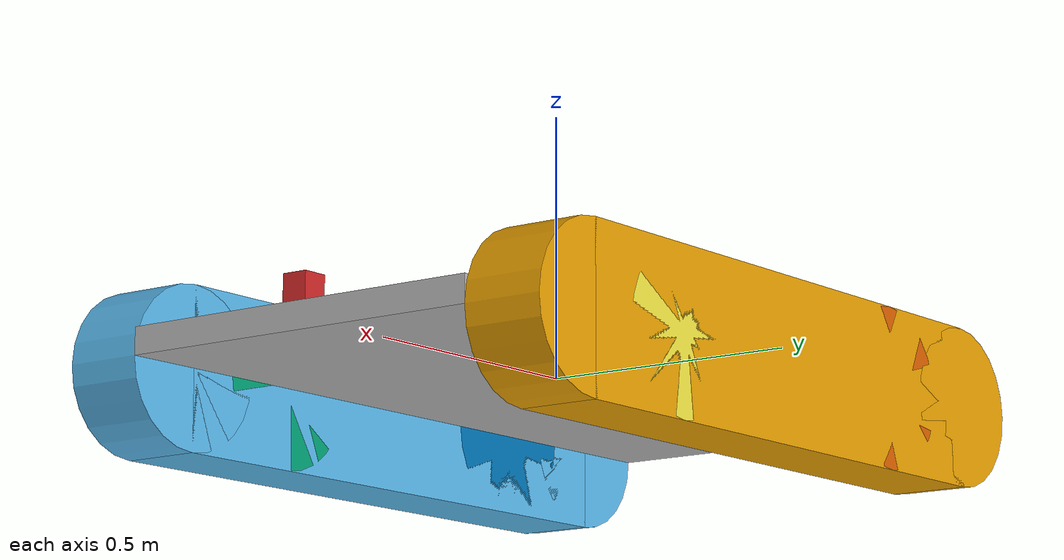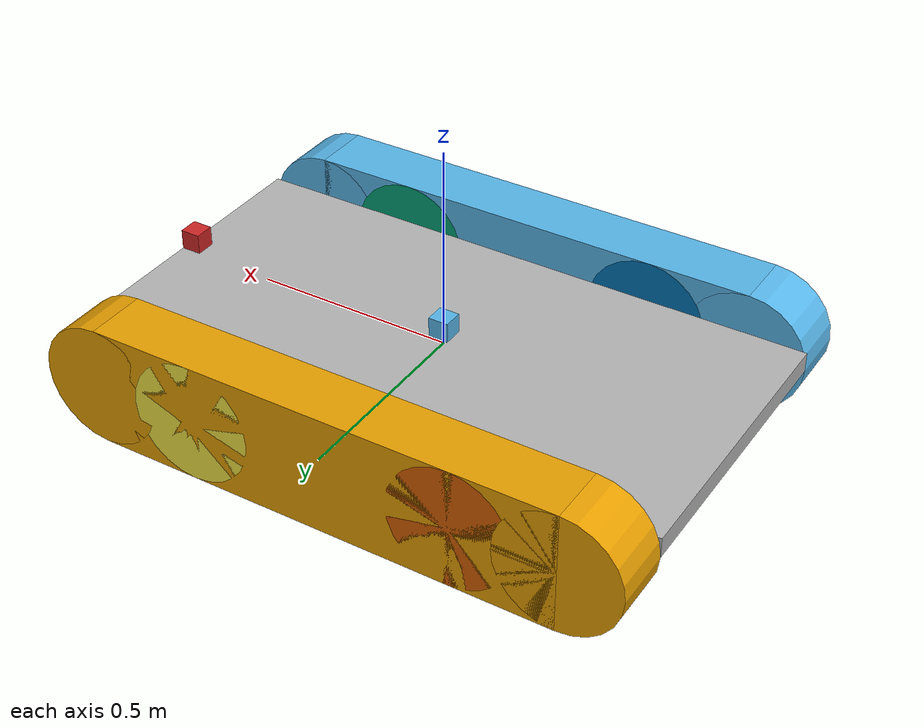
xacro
<?xml version="1.0"?>
<robot xmlns:xacro="http://www.ros.org/wiki/xacro" name="excavator">
  <xacro:property name="itom" value="0.0254" /> <!-- Inches to meters conversion -->
  <xacro:property name="base_width" value="${29*itom}"/>
  <xacro:property name="base_length" value="${58*itom}"/> <!-- Max val: 50" bare minimum -->
  <xacro:property name="base_height" value="${2*itom}"/> <!-- BS'd this number, total random guess -->
  <xacro:property name="wheel_radius" value="${6*itom}"/>
  <xacro:property name="wheel_width" value="${6*itom}"/>

  <!--DRIVEBASE-->
  <!-- A macro for creating a wheel with a link, joint, and transmission -->
  <xacro:macro name="wheel" params="name fb lr">
    <link name="${name}">
      <visual>
        <geometry>
          <cylinder radius="${wheel_radius}" length="${wheel_width}" />
        </geometry>
        <origin rpy="${pi/2} 0 0" />
      </visual>
      <collision>
        <geometry>
          <cylinder radius="${wheel_radius}" length="${wheel_width}" />
        </geometry>
        <origin rpy="${pi/2} 0 0" />
      </collision>
      <inertial>
        <origin xyz="0 ${wheel_width/2} 0" rpy="0 0 0"/>
        <mass value="500"/> <!-- TODO: Update with proper mass, possibly calculated from Solidworks? -->
        <inertia ixx="10.0" ixy="0.0" ixz="0.0" iyy="10.0" iyz="0.0" izz="10.0"/> <!-- TODO: Update with proper inertial values, possibly calculated from Solidworks? -->
      </inertial>
    </link>
    <joint name="${name}_joint" type="continuous">
      <parent link="base_link"/>
      <child link="${name}"/><!--rpy="0 0 ${pi/2}"-->
      <!-- TODO: Settle to more reasonable numbers -->
      <origin xyz="${fb*base_length/2 - 16*fb*itom} ${lr*base_width/2 + lr*wheel_width/2} ${-base_height/2}"/>
      <axis xyz="0 1 0"/>
      <limit effort="100.0"  velocity="100.0"/>
      <dynamics damping="0.7"/>
    </joint>
    <transmission name="${name}_tran">
      <type>transmission_interface/SimpleTransmission</type>
      <joint name="${name}_joint">
        <hardwareInterface>hardware_interface/EffortJointInterface</hardwareInterface>
      </joint>
      <actuator name="${name}_motor">
        <hardwareInterface>hardware_interface/EffortJointInterface</hardwareInterface>
        <mechanicalReduction>1</mechanicalReduction>
        <motorTorqueConstant>1</motorTorqueConstant>
      </actuator>
    </transmission>
  </xacro:macro>

  <link name="tread_left" >
    <visual>
      <geometry>
        <cylinder radius="${wheel_radius}" length="${wheel_width}"/>
      </geometry>
      <origin xyz="${base_length/2-wheel_radius} 0 ${-wheel_width/2}" />
    </visual>
    <visual>
      <geometry>
        <cylinder radius="${wheel_radius}" length="${wheel_width}"/>
      </geometry>
      <origin xyz="${-base_length/2+wheel_radius} 0 ${-wheel_width/2}" />
    </visual>
    <visual>
      <geometry>
        <box size="${base_length-2*wheel_radius} ${2*wheel_radius} ${wheel_width}" />
      </geometry>
      <origin xyz="0 0 ${-wheel_width/2}" />
    </visual>
  </link>

  <link name="tread_right" >
    <visual>
      <geometry>
        <cylinder radius="${wheel_radius}" length="${wheel_width}"/>
      </geometry>
      <origin xyz="${base_length/2-wheel_radius} 0 ${wheel_width/2}" />
    </visual>
    <visual>
      <geometry>
        <cylinder radius="${wheel_radius}" length="${wheel_width}"/>
      </geometry>
      <origin xyz="${-base_length/2+wheel_radius} 0 ${wheel_width/2}" />
    </visual>
    <visual>
      <geometry>
        <box size="${base_length-2*wheel_radius} ${2*wheel_radius} ${wheel_width}" />
      </geometry>
      <origin xyz="0 0 ${wheel_width/2}" />
    </visual>
  </link>

  <joint name="left_tread_to_base" type="fixed">
    <parent link="base_link" />
    <child link="tread_left" />
    <origin xyz="0 ${base_width/2} ${-base_height/2}" rpy="${pi/2} 0 0" />
  </joint>
  <joint name="right_tread_to_base" type="fixed">
    <parent link="base_link" />
    <child link="tread_right" />
    <origin xyz="0 ${-base_width/2} ${-base_height/2}" rpy="${pi/2} 0 0" />
  </joint>

  <xacro:wheel name="wheel_fr" fb="1" lr="-1" />
  <xacro:wheel name="wheel_fl" fb="1" lr="1" />
  <xacro:wheel name="wheel_rr" fb="-1" lr="-1" />
  <xacro:wheel name="wheel_rl" fb="-1" lr="1" />

  <!--GOD-->
  <link name="god" /> <!-- This is necessary because Gazebo complains about the base link having inertia, for some reason -->
  <link name="base_link" >
    <visual>
      <geometry>
        <box size="${base_length} ${base_width} ${base_height}" />
      </geometry>
    </visual>
    <collision>
      <geometry>
        <box size="${base_length} ${base_width} ${base_height}" />
      </geometry>
    </collision>
    <inertial>
      <mass value="50"/> <!-- TODO: Update with proper mass, possibly calculated from Solidworks? -->
      <inertia ixx="100.0" ixy="0.0" ixz="0.0" iyy="100.0" iyz="0.0" izz="100.0"/> <!-- TODO: Update with proper inertial values, possibly calculated from Solidworks? -->
    </inertial>
  </link>
  <joint name="god_to_base" type="fixed">
    <parent link="god" />
    <child link="base_link" />
    <origin xyz="0 0 0" />
  </joint>

  <!--STEREO CAMERA-->
  <xacro:property name="camera_size" value="0.05" /> <!-- Size of square 'camera' box -->
  <joint name="camera_joint" type="fixed">
    <origin xyz="${base_length/2} 0 ${base_height/2}" rpy="0 0 0"/>
    <parent link="base_link"/>
    <child link="camera_link"/>
  </joint>
  <link name="camera_link">
    <collision>
      <origin xyz="-${camera_size/2} 0 ${camera_size/2}" rpy="0 0 0"/>
      <geometry>
        <box size="${camera_size} ${camera_size} ${camera_size}"/>
      </geometry>
    </collision>
    <visual>
      <origin xyz="-${camera_size/2} 0 ${camera_size/2}" rpy="0 0 0"/>
      <geometry>
        <box size="${camera_size} ${camera_size} ${camera_size}"/>
      </geometry>
      <material name="red"/>
    </visual>
    <inertial>
      <mass value="1e-5" />
      <origin xyz="-${camera_size/2} 0 ${camera_size/2}" rpy="0 0 0"/>
      <inertia ixx="1e-6" ixy="0" ixz="0" iyy="1e-6" iyz="0" izz="1e-6" />
    </inertial>
  </link>

  <!--IMU-->
  <xacro:property name="imu_size" value="0.05" /> <!-- Size of square 'camera' box -->
  <joint name="imu_joint" type="fixed">
    <axis xyz="0 0 0"/>
    <origin xyz="0 0 ${base_height/2}"/>
    <parent link="base_link"/>
    <child link="imu_link"/>
  </joint>
  <link name="imu_link">
    <inertial>
      <mass value="1e-5" />
      <origin rpy="0 0 0" xyz="0 0 ${base_height/2}"/>
      <inertia ixx="1e-6" ixy="0" ixz="0" iyy="1e-6" iyz="0" izz="1e-6" />
    </inertial>
    <visual>
      <origin rpy="0 0 0" xyz="0 0 ${base_height/2}"/>
      <geometry>
        <box size="${imu_size} ${imu_size} ${imu_size}"/>
      </geometry>
    </visual>
    <collision>
      <origin rpy="0 0 0" xyz="0 0 ${base_height/2}"/>
      <geometry>
        <box size="${imu_size} ${imu_size} ${imu_size}"/>
      </geometry>
    </collision>
  </link>

</robot>
